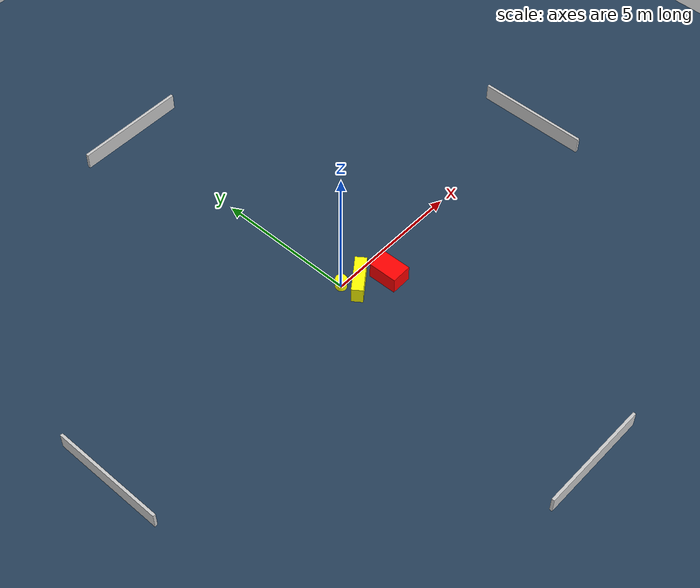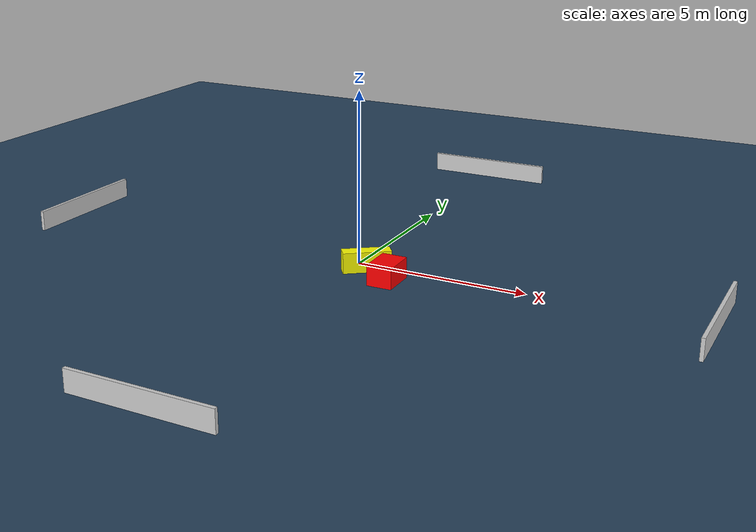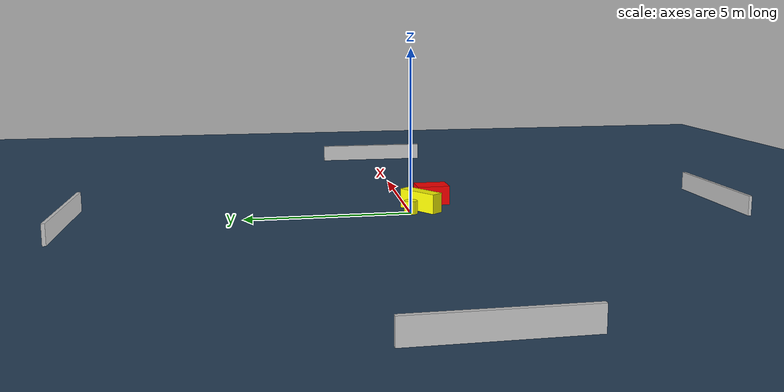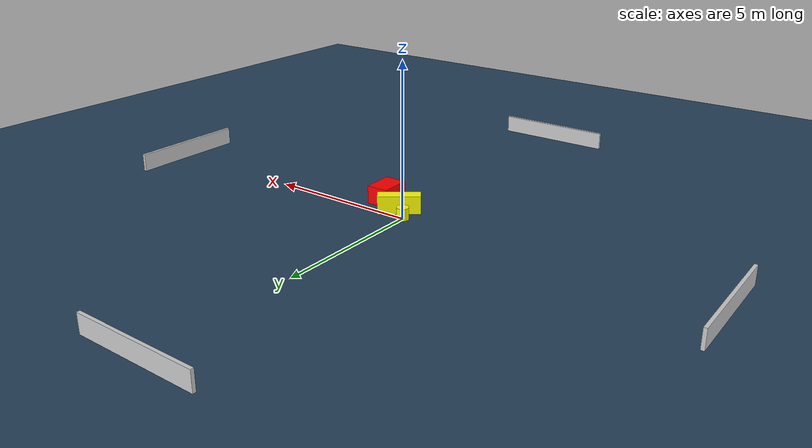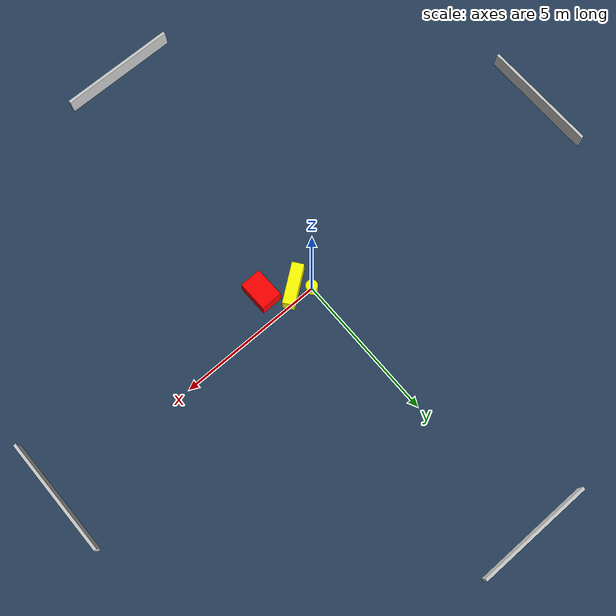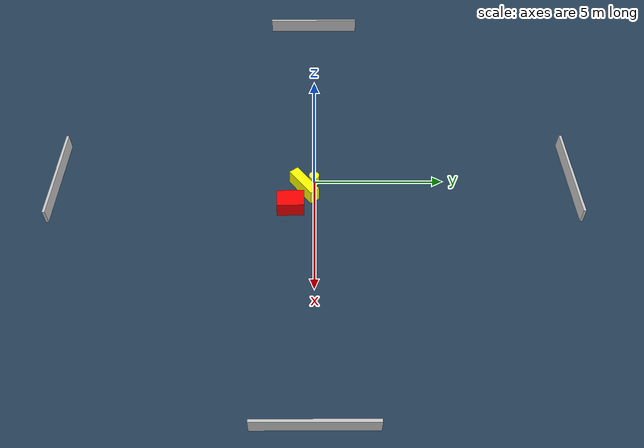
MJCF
<?xml version="1.0" ?>
<mujoco model="generated_environment">
  <option timestep="0.01" integrator="RK4" cone="elliptic"/>
  <default>
    <geom density="1"/>
  </default>
  <asset>
    <texture builtin="gradient" height="3072" name="skybox" rgb1="0.3 0.5 0.7" rgb2="0 0 0" type="skybox" width="512"/>
    <texture builtin="checker" height="300" name="groundplane" rgb1="0.2 0.3 0.4" rgb2="0.1 0.2 0.3" type="2d" width="300"/>
    <material name="groundplane" reflectance="0.2" texrepeat="5 5" texture="groundplane"/>
  </asset>
  <worldbody>
    <light dir="0 0 -1" directional="true" pos="0 0 1.5"/>
    <geom condim="3" friction="0.5 0.005 0.001" material="groundplane" name="floor" pos="0 0 0" size="0 0 0.05" type="plane"/>
    <body name="walls">
      <geom name="wall_1" condim="4" pos="-10.0 0.0 0.3" rgba="0.800000011920929 0.800000011920929 0.800000011920929 1.0" size="0.05 2.0 0.3" type="box"/>
      <geom name="wall_2" condim="4" pos="10.0 0.0 0.3" rgba="0.800000011920929 0.800000011920929 0.800000011920929 1.0" size="0.05 2.0 0.3" type="box"/>
      <geom name="wall_3" condim="4" pos="0.0 -10.0 0.3" rgba="0.800000011920929 0.800000011920929 0.800000011920929 1.0" size="2.0 0.05 0.3" type="box"/>
      <geom name="wall_4" condim="4" pos="0.0 10.0 0.3" rgba="0.800000011920929 0.800000011920929 0.800000011920929 1.0" size="2.0 0.05 0.3" type="box"/>
    </body>
    <body name="robot">
      <joint name="joint_x" type="slide" pos="0 0 0" axis="1 0 0"/>
      <joint name="joint_y" type="slide" pos="0 0 0" axis="0 1 0"/>
      <geom name="robot" type="cylinder" pos="0.0 0.0 0.2" size="0.2 0.2 0.0" mass="5.0" friction="1.0 0.005 0.0001" condim="4" rgba="1.0 1.0 0.0 1.0"/>
    </body>
    <body name="obstacle_1_movable">
      <geom name="obstacle_1_movable" condim="4" pos="0.4307431895702806 -0.3883661225797199 0.3" euler="0 0 216.70334891705778" friction="0.0 0.005 0.001" rgba="1.0 1.0 0.0 1.0" size="0.6896012362703641 0.20054498575184973 0.3" type="box" mass="0.1"/>
      <joint type="free"/>
    </body>
    <body name="obstacle_2_static">
      <geom name="obstacle_2_static" condim="4" pos="1.3234006418732123 -0.8989713981235387 0.3" euler="0 0 1.0693717572354844" friction="0.0 0.005 0.001" rgba="1.0 0.0 0.0 1.0" size="0.36619804437123765 0.5138709024801142 0.3" type="box"/>
    </body>
  </worldbody>
  <actuator>
    <motor name="actuator_x" joint="joint_x" gear="1" ctrlrange="-1 1"/>
    <motor name="actuator_y" joint="joint_y" gear="1" ctrlrange="-1 1"/>
  </actuator>
</mujoco>
